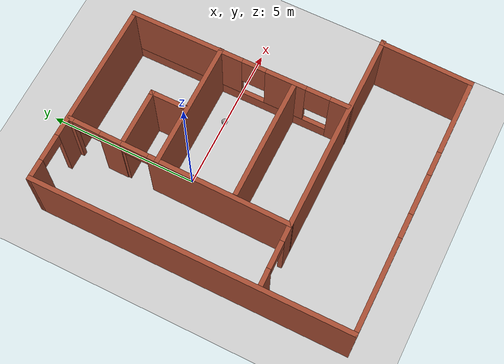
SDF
<sdf version="1.6">
 <world name="default">
  <plugin name="hello" filename="libhello.so"/>
  <light name="sun" type="directional">
   <pose>0 0 10 0 -0 0</pose>
   <diffuse>0.8 0.8 0.8 1</diffuse>
   <specular>0.2 0.2 0.2 1</specular>
   <attenuation>
    <range>1000</range>
    <constant>0.9</constant>
    <linear>0.01</linear>
    <quadratic>0.001</quadratic>
   </attenuation>
   <direction>-0.5 0.1 -0.9</direction>
  </light>
  <model name="ground_plane">
   <static>1</static>
   <link name="link">
    <collision name="collision">
     <geometry><plane><normal>0 0 1</normal><size>100 100</size></plane></geometry>
     <surface>
      <contact><collide_bitmask>65535</collide_bitmask></contact>
      <friction><ode><mu>100</mu><mu2>50</mu2></ode></friction>
     </surface>
    </collision>
    <visual name="visual">
     <cast_shadows>0</cast_shadows>
     <geometry><plane><normal>0 0 1</normal><size>100 100</size></plane></geometry>
     <material>
      <script><uri>file://media/materials/scripts/gazebo.material</uri><name>Gazebo/Grey</name></script>
     </material>
    </visual>
   </link>
  </model>
  <gravity>0 0 -9.8</gravity>
  <magnetic_field>6e-06 2.3e-05 -4.2e-05</magnetic_field>
  <atmosphere type="adiabatic"/>
  <physics name="default_physics" default="0" type="ode">
   <max_step_size>0.001</max_step_size>
   <real_time_factor>1</real_time_factor>
   <real_time_update_rate>1000</real_time_update_rate>
  </physics>
  <scene><ambient>0.4 0.4 0.4 1</ambient><background>0.7 0.7 0.7 1</background><shadows>1</shadows></scene>
  <spherical_coordinates>
   <surface_model>EARTH_WGS84</surface_model>
   <latitude_deg>0</latitude_deg>
   <longitude_deg>0</longitude_deg>
   <elevation>0</elevation>
   <heading_deg>0</heading_deg>
  </spherical_coordinates>
  <model name="home">
   <pose>1.51072 -1.46585 0 0 -0 0</pose>
   <link name="Wall_0">
    <collision name="Wall_0_Collision">
     <geometry><box><size>10.5 0.15 2.5</size></box></geometry>
     <pose>0 0 1.25 0 -0 0</pose>
    </collision>
    <visual name="Wall_0_Visual">
     <pose>0 0 1.25 0 -0 0</pose>
     <geometry><box><size>10.5 0.15 2.5</size></box></geometry>
     <material>
      <script><uri>file://media/materials/scripts/gazebo.material</uri><name>Gazebo/Bricks</name></script>
      <ambient>1 1 1 1</ambient>
     </material>
     <meta><layer>0</layer></meta>
    </visual>
    <pose>-4.35728 0.000688 0 0 0 -1.5708</pose>
   </link>
   <link name="Wall_10">
    <pose>-0.057284 -5.17431 0 0 -0 0</pose>
    <visual name="Wall_10_Visual_0">
     <pose>-2.78631 0 1.25 0 -0 0</pose>
     <geometry><box><size>3.17739 0.15 2.5</size></box></geometry>
     <material>
      <script><uri>file://media/materials/scripts/gazebo.material</uri><name>Gazebo/Bricks</name></script>
      <ambient>1 1 1 1</ambient>
     </material>
     <meta><layer>0</layer></meta>
    </visual>
    <collision name="Wall_10_Collision_0">
     <geometry><box><size>3.17739 0.15 2.5</size></box></geometry>
     <pose>-2.78631 0 1.25 0 -0 0</pose>
    </collision>
    <visual name="Wall_10_Visual_1">
     <pose>1.58869 0 0.25 0 -0 0</pose>
     <geometry><box><size>5.57261 0.15 0.5</size></box></geometry>
     <material>
      <script><uri>file://media/materials/scripts/gazebo.material</uri><name>Gazebo/Bricks</name></script>
      <ambient>1 1 1 1</ambient>
     </material>
     <meta><layer>0</layer></meta>
    </visual>
    <collision name="Wall_10_Collision_1">
     <geometry><box><size>5.57261 0.15 0.5</size></box></geometry>
     <pose>1.58869 0 0.25 0 -0 0</pose>
    </collision>
    <visual name="Wall_10_Visual_2">
     <pose>0.277961 0 1.5 0 -0 0</pose>
     <geometry><box><size>1.35115 0.15 2</size></box></geometry>
     <material>
      <script><uri>file://media/materials/scripts/gazebo.material</uri><name>Gazebo/Bricks</name></script>
      <ambient>1 1 1 1</ambient>
     </material>
     <meta><layer>0</layer></meta>
    </visual>
    <collision name="Wall_10_Collision_2">
     <geometry><box><size>1.35115 0.15 2</size></box></geometry>
     <pose>0.277961 0 1.5 0 -0 0</pose>
    </collision>
    <visual name="Wall_10_Visual_3">
     <pose>3.06427 0 1.5 0 -0 0</pose>
     <geometry><box><size>2.62147 0.15 2</size></box></geometry>
     <material>
      <script><uri>file://media/materials/scripts/gazebo.material</uri><name>Gazebo/Bricks</name></script>
      <ambient>1 1 1 1</ambient>
     </material>
     <meta><layer>0</layer></meta>
    </visual>
    <collision name="Wall_10_Collision_3">
     <geometry><box><size>2.62147 0.15 2</size></box></geometry>
     <pose>3.06427 0 1.5 0 -0 0</pose>
    </collision>
    <visual name="Wall_10_Visual_4">
     <pose>-0.797613 0 1.9 0 -0 0</pose>
     <geometry><box><size>0.8 0.15 1.2</size></box></geometry>
     <material>
      <script><uri>file://media/materials/scripts/gazebo.material</uri><name>Gazebo/Bricks</name></script>
      <ambient>1 1 1 1</ambient>
     </material>
     <meta><layer>0</layer></meta>
    </visual>
    <collision name="Wall_10_Collision_4">
     <geometry><box><size>0.8 0.15 1.2</size></box></geometry>
     <pose>-0.797613 0 1.9 0 -0 0</pose>
    </collision>
    <visual name="Wall_10_Visual_5">
     <pose>1.35353 0 1.9 0 -0 0</pose>
     <geometry><box><size>0.8 0.15 1.2</size></box></geometry>
     <material>
      <script><uri>file://media/materials/scripts/gazebo.material</uri><name>Gazebo/Bricks</name></script>
      <ambient>1 1 1 1</ambient>
     </material>
     <meta><layer>0</layer></meta>
    </visual>
    <collision name="Wall_10_Collision_5">
     <geometry><box><size>0.8 0.15 1.2</size></box></geometry>
     <pose>1.35353 0 1.9 0 -0 0</pose>
    </collision>
   </link>
   <link name="Wall_11">
    <collision name="Wall_11_Collision">
     <geometry><box><size>0.15 0.15 2.5</size></box></geometry>
     <pose>0 0 1.25 0 -0 0</pose>
    </collision>
    <visual name="Wall_11_Visual">
     <pose>0 0 1.25 0 -0 0</pose>
     <geometry><box><size>0.15 0.15 2.5</size></box></geometry>
     <material>
      <script><uri>file://media/materials/scripts/gazebo.material</uri><name>Gazebo/Grey</name></script>
      <ambient>1 1 1 1</ambient>
     </material>
     <meta><layer>0</layer></meta>
    </visual>
    <pose>4.24272 -5.17431 0 0 -0 0</pose>
   </link>
   <link name="Wall_12">
    <collision name="Wall_12_Collision">
     <geometry><box><size>3.10488 0.15 2.5</size></box></geometry>
     <pose>0 0 1.25 0 -0 0</pose>
    </collision>
    <visual name="Wall_12_Visual">
     <pose>0 0 1.25 0 -0 0</pose>
     <geometry><box><size>3.10488 0.15 2.5</size></box></geometry>
     <material>
      <script><uri>file://media/materials/scripts/gazebo.material</uri><name>Gazebo/Bricks</name></script>
      <ambient>1 1 1 1</ambient>
     </material>
     <meta><layer>0</layer></meta>
    </visual>
    <pose>4.28297 -3.69742 0 0 -0 1.54354</pose>
   </link>
   <link name="Wall_14">
    <pose>1.87287 1.44732 0 0 -0 1.5708</pose>
    <visual name="Wall_14_Visual_0">
     <pose>-3.39065 0 1.25 0 -0 0</pose>
     <geometry><box><size>0.718703 0.15 2.5</size></box></geometry>
     <material>
      <script><uri>file://media/materials/scripts/gazebo.material</uri><name>Gazebo/Bricks</name></script>
      <ambient>1 1 1 1</ambient>
     </material>
     <meta><layer>0</layer></meta>
    </visual>
    <collision name="Wall_14_Collision_0">
     <geometry><box><size>0.718703 0.15 2.5</size></box></geometry>
     <pose>-3.39065 0 1.25 0 -0 0</pose>
    </collision>
    <visual name="Wall_14_Visual_1">
     <pose>0.359352 0 0.25 0 -0 0</pose>
     <geometry><box><size>6.7813 0.15 0.5</size></box></geometry>
     <material>
      <script><uri>file://media/materials/scripts/gazebo.material</uri><name>Gazebo/Bricks</name></script>
      <ambient>1 1 1 1</ambient>
     </material>
     <meta><layer>0</layer></meta>
    </visual>
    <collision name="Wall_14_Collision_1">
     <geometry><box><size>6.7813 0.15 0.5</size></box></geometry>
     <pose>0.359352 0 0.25 0 -0 0</pose>
    </collision>
    <visual name="Wall_14_Visual_2">
     <pose>-1.55572 0 1.5 0 -0 0</pose>
     <geometry><box><size>1.35115 0.15 2</size></box></geometry>
     <material>
      <script><uri>file://media/materials/scripts/gazebo.material</uri><name>Gazebo/Bricks</name></script>
      <ambient>1 1 1 1</ambient>
     </material>
     <meta><layer>0</layer></meta>
    </visual>
    <collision name="Wall_14_Collision_2">
     <geometry><box><size>1.35115 0.15 2</size></box></geometry>
     <pose>-1.55572 0 1.5 0 -0 0</pose>
    </collision>
    <visual name="Wall_14_Visual_3">
     <pose>1.83492 0 1.5 0 -0 0</pose>
     <geometry><box><size>3.83015 0.15 2</size></box></geometry>
     <material>
      <script><uri>file://media/materials/scripts/gazebo.material</uri><name>Gazebo/Bricks</name></script>
      <ambient>1 1 1 1</ambient>
     </material>
     <meta><layer>0</layer></meta>
    </visual>
    <collision name="Wall_14_Collision_3">
     <geometry><box><size>3.83015 0.15 2</size></box></geometry>
     <pose>1.83492 0 1.5 0 -0 0</pose>
    </collision>
    <visual name="Wall_14_Visual_4">
     <pose>-2.6313 0 1.9 0 -0 0</pose>
     <geometry><box><size>0.8 0.15 1.2</size></box></geometry>
     <material>
      <script><uri>file://media/materials/scripts/gazebo.material</uri><name>Gazebo/Bricks</name></script>
      <ambient>1 1 1 1</ambient>
     </material>
     <meta><layer>0</layer></meta>
    </visual>
    <collision name="Wall_14_Collision_4">
     <geometry><box><size>0.8 0.15 1.2</size></box></geometry>
     <pose>-2.6313 0 1.9 0 -0 0</pose>
    </collision>
    <visual name="Wall_14_Visual_5">
     <pose>-0.48015 0 1.9 0 -0 0</pose>
     <geometry><box><size>0.8 0.15 1.2</size></box></geometry>
     <material>
      <script><uri>file://media/materials/scripts/gazebo.material</uri><name>Gazebo/Bricks</name></script>
      <ambient>1 1 1 1</ambient>
     </material>
     <meta><layer>0</layer></meta>
    </visual>
    <collision name="Wall_14_Collision_5">
     <geometry><box><size>0.8 0.15 1.2</size></box></geometry>
     <pose>-0.48015 0 1.9 0 -0 0</pose>
    </collision>
   </link>
   <link name="Wall_15">
    <pose>-1.24221 5.149 0 0 -0 3.13303</pose>
    <visual name="Wall_15_Visual_0">
     <pose>-0.808977 0 1.25 0 -0 0</pose>
     <geometry><box><size>4.76243 0.15 2.5</size></box></geometry>
     <material>
      <script><uri>file://media/materials/scripts/gazebo.material</uri><name>Gazebo/Bricks</name></script>
      <ambient>1 1 1 1</ambient>
     </material>
     <meta><layer>0</layer></meta>
    </visual>
    <collision name="Wall_15_Collision_0">
     <geometry><box><size>4.76243 0.15 2.5</size></box></geometry>
     <pose>-0.808977 0 1.25 0 -0 0</pose>
    </collision>
    <visual name="Wall_15_Visual_1">
     <pose>2.83122 0 1.25 0 -0 0</pose>
     <geometry><box><size>0.717955 0.15 2.5</size></box></geometry>
     <material>
      <script><uri>file://media/materials/scripts/gazebo.material</uri><name>Gazebo/Bricks</name></script>
      <ambient>1 1 1 1</ambient>
     </material>
     <meta><layer>0</layer></meta>
    </visual>
    <collision name="Wall_15_Collision_1">
     <geometry><box><size>0.717955 0.15 2.5</size></box></geometry>
     <pose>2.83122 0 1.25 0 -0 0</pose>
    </collision>
    <visual name="Wall_15_Visual_2">
     <pose>2.02224 0 2.25 0 -0 0</pose>
     <geometry><box><size>0.9 0.15 0.5</size></box></geometry>
     <material>
      <script><uri>file://media/materials/scripts/gazebo.material</uri><name>Gazebo/Bricks</name></script>
      <ambient>1 1 1 1</ambient>
     </material>
     <meta><layer>0</layer></meta>
    </visual>
    <collision name="Wall_15_Collision_2">
     <geometry><box><size>0.9 0.15 0.5</size></box></geometry>
     <pose>2.02224 0 2.25 0 -0 0</pose>
    </collision>
   </link>
   <link name="Wall_17">
    <pose>-3.27473 -2.23787 0 0 0 -3.12421</pose>
    <visual name="Wall_17_Visual_0">
     <pose>-0.760677 0 1.25 0 -0 0</pose>
     <geometry><box><size>0.62486 0.15 2.5</size></box></geometry>
     <material>
      <script><uri>file://media/materials/scripts/gazebo.material</uri><name>Gazebo/Bricks</name></script>
      <ambient>1 1 1 1</ambient>
     </material>
     <meta><layer>0</layer></meta>
    </visual>
    <collision name="Wall_17_Collision_0">
     <geometry><box><size>0.62486 0.15 2.5</size></box></geometry>
     <pose>-0.760677 0 1.25 0 -0 0</pose>
    </collision>
    <visual name="Wall_17_Visual_1">
     <pose>0.76243 0 1.25 0 -0 0</pose>
     <geometry><box><size>0.621354 0.15 2.5</size></box></geometry>
     <material>
      <script><uri>file://media/materials/scripts/gazebo.material</uri><name>Gazebo/Bricks</name></script>
      <ambient>1 1 1 1</ambient>
     </material>
     <meta><layer>0</layer></meta>
    </visual>
    <collision name="Wall_17_Collision_1">
     <geometry><box><size>0.621354 0.15 2.5</size></box></geometry>
     <pose>0.76243 0 1.25 0 -0 0</pose>
    </collision>
    <visual name="Wall_17_Visual_2">
     <pose>0.001753 0 2.25 0 -0 0</pose>
     <geometry><box><size>0.9 0.15 0.5</size></box></geometry>
     <material>
      <script><uri>file://media/materials/scripts/gazebo.material</uri><name>Gazebo/Bricks</name></script>
      <ambient>1 1 1 1</ambient>
     </material>
     <meta><layer>0</layer></meta>
    </visual>
    <collision name="Wall_17_Collision_2">
     <geometry><box><size>0.9 0.15 0.5</size></box></geometry>
     <pose>0.001753 0 2.25 0 -0 0</pose>
    </collision>
   </link>
   <link name="Wall_19">
    <collision name="Wall_19_Collision">
     <geometry><box><size>4 0.15 2.5</size></box></geometry>
     <pose>0 0 1.25 0 -0 0</pose>
    </collision>
    <visual name="Wall_19_Visual">
     <pose>0 0 1.25 0 -0 0</pose>
     <geometry><box><size>4 0.15 2.5</size></box></geometry>
     <material>
      <script><uri>file://media/materials/scripts/gazebo.material</uri><name>Gazebo/Bricks</name></script>
      <ambient>1 1 1 1</ambient>
     </material>
     <meta><layer>0</layer></meta>
    </visual>
    <pose>-0.166772 -0.407181 0 0 -0 0</pose>
   </link>
   <link name="Wall_21">
    <collision name="Wall_21_Collision">
     <geometry><box><size>4.25 0.15 2.5</size></box></geometry>
     <pose>0 0 1.25 0 -0 0</pose>
    </collision>
    <visual name="Wall_21_Visual">
     <pose>0 0 1.25 0 -0 0</pose>
     <geometry><box><size>4.25 0.15 2.5</size></box></geometry>
     <material>
      <script><uri>file://media/materials/scripts/gazebo.material</uri><name>Gazebo/Bricks</name></script>
      <ambient>1 1 1 1</ambient>
     </material>
     <meta><layer>0</layer></meta>
    </visual>
    <pose>-0.163138 2.11834 0 0 -0 0</pose>
   </link>
   <link name="Wall_23">
    <collision name="Wall_23_Collision">
     <geometry><box><size>2 0.15 2.5</size></box></geometry>
     <pose>0 0 1.25 0 -0 0</pose>
    </collision>
    <visual name="Wall_23_Visual">
     <pose>0 0 1.25 0 -0 0</pose>
     <geometry><box><size>2 0.15 2.5</size></box></geometry>
     <material>
      <script><uri>file://media/materials/scripts/gazebo.material</uri><name>Gazebo/Bricks</name></script>
      <ambient>1 1 1 1</ambient>
     </material>
     <meta><layer>0</layer></meta>
    </visual>
    <pose>-1.24768 3.31473 0 0 -0 0</pose>
   </link>
   <link name="Wall_29">
    <collision name="Wall_29_Collision">
     <geometry><box><size>1.25 0.15 2.5</size></box></geometry>
     <pose>0 0 1.25 0 -0 0</pose>
    </collision>
    <visual name="Wall_29_Visual">
     <pose>0 0 1.25 0 -0 0</pose>
     <geometry><box><size>1.25 0.15 2.5</size></box></geometry>
     <material>
      <script><uri>file://media/materials/scripts/gazebo.material</uri><name>Gazebo/Bricks</name></script>
      <ambient>1 1 1 1</ambient>
     </material>
     <meta><layer>0</layer></meta>
    </visual>
    <pose>-0.322682 2.76473 0 0 0 -1.5708</pose>
   </link>
   <link name="Wall_5">
    <pose>-2.22473 1.43712 0 0 0 -1.58502</pose>
    <visual name="Wall_5_Visual_0">
     <pose>-3.6274 0 1.25 0 -0 0</pose>
     <geometry><box><size>0.210578 0.15 2.5</size></box></geometry>
     <material>
      <script><uri>file://media/materials/scripts/gazebo.material</uri><name>Gazebo/Bricks</name></script>
      <ambient>1 1 1 1</ambient>
     </material>
     <meta><layer>0</layer></meta>
    </visual>
    <collision name="Wall_5_Collision_0">
     <geometry><box><size>0.210578 0.15 2.5</size></box></geometry>
     <pose>-3.6274 0 1.25 0 -0 0</pose>
    </collision>
    <visual name="Wall_5_Visual_1">
     <pose>-2.26053 0 1.25 0 -0 0</pose>
     <geometry><box><size>0.723174 0.15 2.5</size></box></geometry>
     <material>
      <script><uri>file://media/materials/scripts/gazebo.material</uri><name>Gazebo/Bricks</name></script>
      <ambient>1 1 1 1</ambient>
     </material>
     <meta><layer>0</layer></meta>
    </visual>
    <collision name="Wall_5_Collision_1">
     <geometry><box><size>0.723174 0.15 2.5</size></box></geometry>
     <pose>-2.26053 0 1.25 0 -0 0</pose>
    </collision>
    <visual name="Wall_5_Visual_2">
     <pose>1.36688 0 1.25 0 -0 0</pose>
     <geometry><box><size>4.73163 0.15 2.5</size></box></geometry>
     <material>
      <script><uri>file://media/materials/scripts/gazebo.material</uri><name>Gazebo/Bricks</name></script>
      <ambient>1 1 1 1</ambient>
     </material>
     <meta><layer>0</layer></meta>
    </visual>
    <collision name="Wall_5_Collision_2">
     <geometry><box><size>4.73163 0.15 2.5</size></box></geometry>
     <pose>1.36688 0 1.25 0 -0 0</pose>
    </collision>
    <visual name="Wall_5_Visual_3">
     <pose>-3.07212 0 2.25 0 -0 0</pose>
     <geometry><box><size>0.9 0.15 0.5</size></box></geometry>
     <material>
      <script><uri>file://media/materials/scripts/gazebo.material</uri><name>Gazebo/Bricks</name></script>
      <ambient>1 1 1 1</ambient>
     </material>
     <meta><layer>0</layer></meta>
    </visual>
    <collision name="Wall_5_Collision_3">
     <geometry><box><size>0.9 0.15 0.5</size></box></geometry>
     <pose>-3.07212 0 2.25 0 -0 0</pose>
    </collision>
    <visual name="Wall_5_Visual_4">
     <pose>-1.44894 0 2.25 0 -0 0</pose>
     <geometry><box><size>0.9 0.15 0.5</size></box></geometry>
     <material>
      <script><uri>file://media/materials/scripts/gazebo.material</uri><name>Gazebo/Bricks</name></script>
      <ambient>1 1 1 1</ambient>
     </material>
     <meta><layer>0</layer></meta>
    </visual>
    <collision name="Wall_5_Collision_4">
     <geometry><box><size>0.9 0.15 0.5</size></box></geometry>
     <pose>-1.44894 0 2.25 0 -0 0</pose>
    </collision>
   </link>
   <link name="Wall_6">
    <collision name="Wall_6_Collision">
     <geometry><box><size>6.75 0.15 2.5</size></box></geometry>
     <pose>0 0 1.25 0 -0 0</pose>
    </collision>
    <visual name="Wall_6_Visual">
     <pose>0 0 1.25 0 -0 0</pose>
     <geometry><box><size>6.75 0.15 2.5</size></box></geometry>
     <material>
      <script><uri>file://media/materials/scripts/gazebo.material</uri><name>Gazebo/Bricks</name></script>
      <ambient>1 1 1 1</ambient>
     </material>
     <meta><layer>0</layer></meta>
    </visual>
    <pose>1.05793 -2.22053 0 0 -0 0</pose>
   </link>
   <static>1</static>
  </model>
  <model name="myworld">
   <link name="link_0">
    <inertial>
     <mass>1</mass>
     <inertia><ixx>0.1</ixx><ixy>0</ixy><ixz>0</ixz><iyy>0.1</iyy><iyz>0</iyz><izz>0.1</izz></inertia>
    </inertial>
    <visual name="visual">
     <geometry><sphere><radius>0.1</radius></sphere></geometry>
     <material>
      <lighting>1</lighting>
      <script><uri>file://media/materials/scripts/gazebo.material</uri><name>Gazebo/Grey</name></script>
      <shader type="pixel"><normal_map>__default__</normal_map></shader>
      <ambient>1 1 1 1</ambient>
      <diffuse>1 1 1 1</diffuse>
      <specular>1 1 1 1</specular>
      <emissive>1 1 1 1</emissive>
     </material>
    </visual>
    <collision name="collision">
     <geometry><sphere><radius>0.1</radius></sphere></geometry>
     <surface>
      <friction>
       <ode><mu>1</mu><mu2>1</mu2><fdir1>0 0 0</fdir1><slip1>0</slip1><slip2>0</slip2></ode>
       <torsional>
        <coefficient>1</coefficient>
        <patch_radius>0</patch_radius>
        <surface_radius>0</surface_radius>
        <use_patch_radius>1</use_patch_radius>
        <ode><slip>0</slip></ode>
       </torsional>
      </friction>
      <bounce><restitution_coefficient>0</restitution_coefficient><threshold>1e+06</threshold></bounce>
      <contact>
       <collide_without_contact>0</collide_without_contact>
       <collide_without_contact_bitmask>1</collide_without_contact_bitmask>
       <collide_bitmask>1</collide_bitmask>
       <ode>
        <soft_cfm>0</soft_cfm>
        <soft_erp>0.2</soft_erp>
        <kp>1e+13</kp>
        <kd>1</kd>
        <max_vel>0.01</max_vel>
        <min_depth>0</min_depth>
       </ode>
       <bullet>
        <split_impulse>1</split_impulse>
        <split_impulse_penetration_threshold>-0.01</split_impulse_penetration_threshold>
        <soft_cfm>0</soft_cfm>
        <soft_erp>0.2</soft_erp>
        <kp>1e+13</kp>
        <kd>1</kd>
       </bullet>
      </contact>
     </surface>
    </collision>
   </link>
   <static>0</static>
   <pose>2.2989 0.01501 0.1 0 -0 0</pose>
  </model>
 </world>
</sdf>
